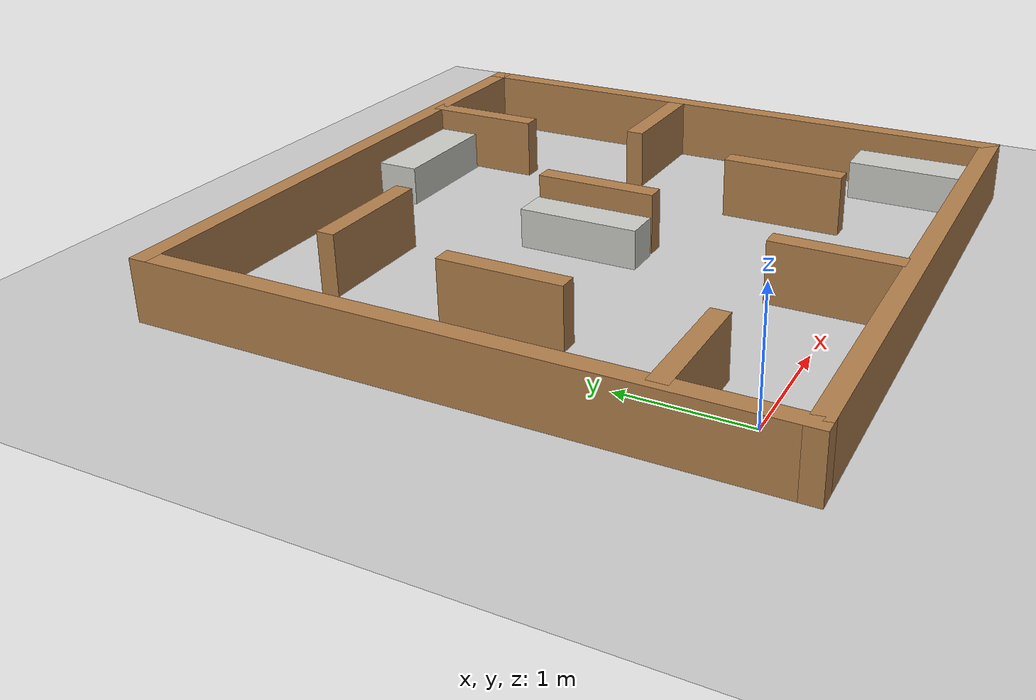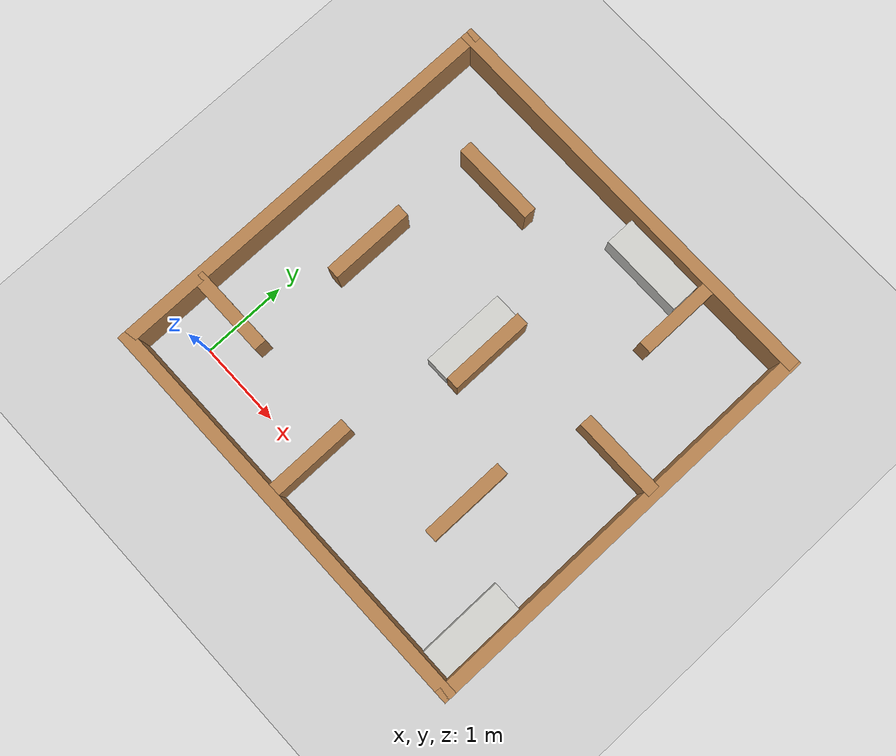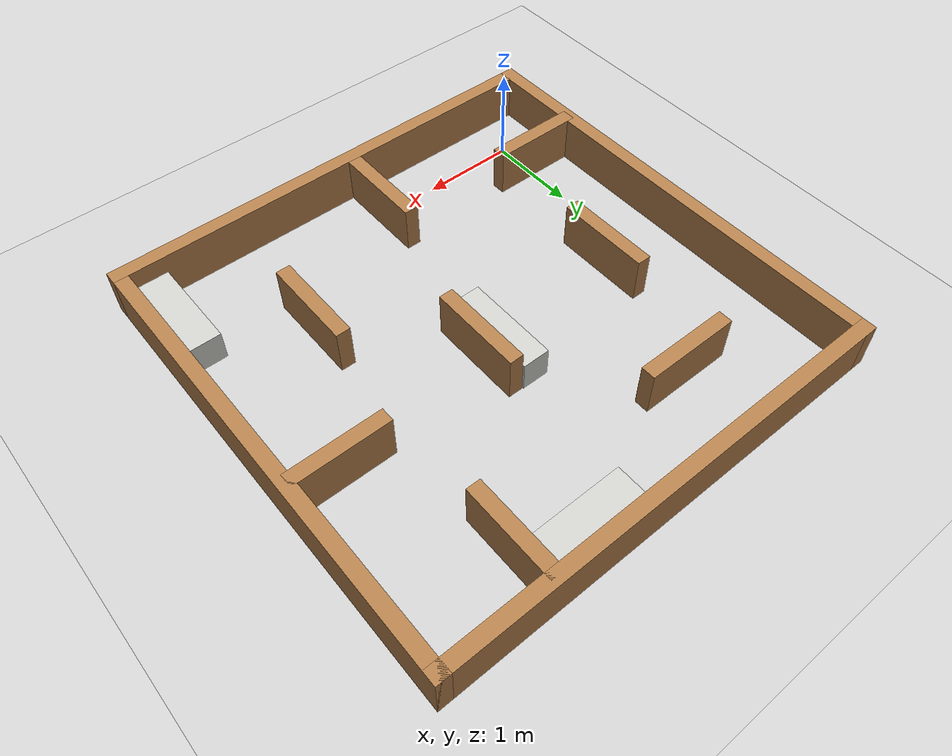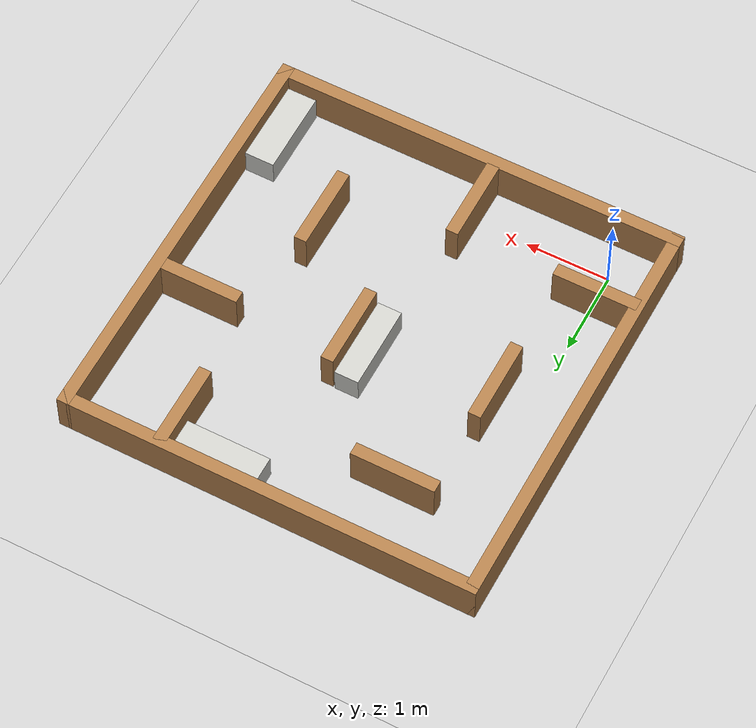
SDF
<sdf version="1.6">
 <world name="default">
  <light name="sun" type="directional">
   <pose>0 0 10 0 -0 0</pose>
   <diffuse>0.8 0.8 0.8 1</diffuse>
   <specular>0.2 0.2 0.2 1</specular>
   <attenuation>
    <range>1000</range>
    <constant>0.9</constant>
    <linear>0.01</linear>
    <quadratic>0.001</quadratic>
   </attenuation>
   <direction>-0.5 0.1 -0.9</direction>
  </light>
  <model name="ground_plane">
   <static>1</static>
   <link name="link">
    <collision name="collision">
     <geometry><plane><normal>0 0 1</normal><size>100 100</size></plane></geometry>
     <surface>
      <contact><collide_bitmask>65535</collide_bitmask></contact>
      <friction><ode><mu>100</mu><mu2>50</mu2></ode></friction>
     </surface>
    </collision>
    <visual name="visual">
     <cast_shadows>0</cast_shadows>
     <geometry><plane><normal>0 0 1</normal><size>100 100</size></plane></geometry>
     <material>
      <script><uri>file://media/materials/scripts/gazebo.material</uri><name>Gazebo/Grey</name></script>
     </material>
    </visual>
   </link>
  </model>
  <gravity>0 0 -9.8</gravity>
  <magnetic_field>6e-06 2.3e-05 -4.2e-05</magnetic_field>
  <atmosphere type="adiabatic"/>
  <physics name="default_physics" default="0" type="ode">
   <max_step_size>0.001</max_step_size>
   <real_time_factor>1</real_time_factor>
   <real_time_update_rate>1000</real_time_update_rate>
  </physics>
  <scene><ambient>0.4 0.4 0.4 1</ambient><background>0.7 0.7 0.7 1</background><shadows>1</shadows></scene>
  <spherical_coordinates>
   <surface_model>EARTH_WGS84</surface_model>
   <latitude_deg>0</latitude_deg>
   <longitude_deg>0</longitude_deg>
   <elevation>0</elevation>
   <heading_deg>0</heading_deg>
  </spherical_coordinates>
  <model name="turtlebot3_plaza">
   <pose>1.88247 1.91248 0.009705 0 -0 0</pose>
   <link name="Wall_0">
    <collision name="Wall_0_Collision">
     <geometry><box><size>5 0.15 0.5</size></box></geometry>
     <pose>0 0 0.25 0 -0 0</pose>
    </collision>
    <visual name="Wall_0_Visual">
     <pose>0 0 0.25 0 -0 0</pose>
     <geometry><box><size>5 0.15 0.5</size></box></geometry>
     <material>
      <script><uri>file://media/materials/scripts/gazebo.material</uri><name>Gazebo/Wood</name></script>
      <ambient>1 1 1 1</ambient>
     </material>
    </visual>
    <pose>-2.425 0 0 0 -0 1.5708</pose>
   </link>
   <link name="Wall_11">
    <collision name="Wall_11_Collision">
     <geometry><box><size>1 0.15 0.5</size></box></geometry>
     <pose>0 0 0.25 0 -0 0</pose>
    </collision>
    <visual name="Wall_11_Visual">
     <pose>0 0 0.25 0 -0 0</pose>
     <geometry><box><size>1 0.15 0.5</size></box></geometry>
     <material>
      <script><uri>file://media/materials/scripts/gazebo.material</uri><name>Gazebo/Wood</name></script>
      <ambient>1 1 1 1</ambient>
     </material>
    </visual>
    <pose>-1.937 -1.467 0 0 -0 0</pose>
   </link>
   <link name="Wall_13">
    <collision name="Wall_13_Collision">
     <geometry><box><size>1 0.15 0.5</size></box></geometry>
     <pose>0 0 0.25 0 -0 0</pose>
    </collision>
    <visual name="Wall_13_Visual">
     <pose>0 0 0.25 0 -0 0</pose>
     <geometry><box><size>1 0.15 0.5</size></box></geometry>
     <material>
      <script><uri>file://media/materials/scripts/gazebo.material</uri><name>Gazebo/Wood</name></script>
      <ambient>1 1 1 1</ambient>
     </material>
    </visual>
    <pose>-0.22 -1.866 0 0 0 -1.5708</pose>
   </link>
   <link name="Wall_15">
    <collision name="Wall_15_Collision">
     <geometry><box><size>1 0.15 0.5</size></box></geometry>
     <pose>0 0 0.25 0 -0 0</pose>
    </collision>
    <visual name="Wall_15_Visual">
     <pose>0 0 0.25 0 -0 0</pose>
     <geometry><box><size>1 0.15 0.5</size></box></geometry>
     <material>
      <script><uri>file://media/materials/scripts/gazebo.material</uri><name>Gazebo/Wood</name></script>
      <ambient>1 1 1 1</ambient>
     </material>
    </visual>
    <pose>1.195 -1.002 0 0 -0 1.5708</pose>
   </link>
   <link name="Wall_17">
    <collision name="Wall_17_Collision">
     <geometry><box><size>1 0.15 0.5</size></box></geometry>
     <pose>0 0 0.25 0 -0 0</pose>
    </collision>
    <visual name="Wall_17_Visual">
     <pose>0 0 0.25 0 -0 0</pose>
     <geometry><box><size>1 0.15 0.5</size></box></geometry>
     <material>
      <script><uri>file://media/materials/scripts/gazebo.material</uri><name>Gazebo/Wood</name></script>
      <ambient>1 1 1 1</ambient>
     </material>
    </visual>
    <pose>1.288 1.93 0 0 0 -1.5708</pose>
   </link>
   <link name="Wall_19">
    <collision name="Wall_19_Collision">
     <geometry><box><size>1 0.15 0.5</size></box></geometry>
     <pose>0 0 0.25 0 -0 0</pose>
    </collision>
    <visual name="Wall_19_Visual">
     <pose>0 0 0.25 0 -0 0</pose>
     <geometry><box><size>1 0.15 0.5</size></box></geometry>
     <material>
      <script><uri>file://media/materials/scripts/gazebo.material</uri><name>Gazebo/Wood</name></script>
      <ambient>1 1 1 1</ambient>
     </material>
    </visual>
    <pose>1.91128 0.4632 0 0 -0 0</pose>
   </link>
   <link name="Wall_2">
    <collision name="Wall_2_Collision">
     <geometry><box><size>5 0.15 0.5</size></box></geometry>
     <pose>0 0 0.25 0 -0 0</pose>
    </collision>
    <visual name="Wall_2_Visual">
     <pose>0 0 0.25 0 -0 0</pose>
     <geometry><box><size>5 0.15 0.5</size></box></geometry>
     <material>
      <script><uri>file://media/materials/scripts/gazebo.material</uri><name>Gazebo/Wood</name></script>
      <ambient>1 1 1 1</ambient>
     </material>
    </visual>
    <pose>0 2.425 0 0 -0 0</pose>
   </link>
   <link name="Wall_21">
    <collision name="Wall_21_Collision">
     <geometry><box><size>1 0.15 0.5</size></box></geometry>
     <pose>0 0 0.25 0 -0 0</pose>
    </collision>
    <visual name="Wall_21_Visual">
     <pose>0 0 0.25 0 -0 0</pose>
     <geometry><box><size>1 0.15 0.5</size></box></geometry>
     <material>
      <script><uri>file://media/materials/scripts/gazebo.material</uri><name>Gazebo/Wood</name></script>
      <ambient>1 1 1 1</ambient>
     </material>
    </visual>
    <pose>0.204 0.215 0 0 0 -1.5708</pose>
   </link>
   <link name="Wall_3">
    <collision name="Wall_3_Collision">
     <geometry><box><size>5 0.15 0.5</size></box></geometry>
     <pose>0 0 0.25 0 -0 0</pose>
    </collision>
    <visual name="Wall_3_Visual">
     <pose>0 0 0.25 0 -0 0</pose>
     <geometry><box><size>5 0.15 0.5</size></box></geometry>
     <material>
      <script><uri>file://media/materials/scripts/gazebo.material</uri><name>Gazebo/Wood</name></script>
      <ambient>1 1 1 1</ambient>
     </material>
    </visual>
    <pose>2.425 0 0 0 0 -1.5708</pose>
   </link>
   <link name="Wall_4">
    <collision name="Wall_4_Collision">
     <geometry><box><size>5 0.15 0.5</size></box></geometry>
     <pose>0 0 0.25 0 -0 0</pose>
    </collision>
    <visual name="Wall_4_Visual">
     <pose>0 0 0.25 0 -0 0</pose>
     <geometry><box><size>5 0.15 0.5</size></box></geometry>
     <material>
      <script><uri>file://media/materials/scripts/gazebo.material</uri><name>Gazebo/Wood</name></script>
      <ambient>1 1 1 1</ambient>
     </material>
    </visual>
    <pose>0 -2.425 0 0 -0 3.14159</pose>
   </link>
   <link name="Wall_7">
    <collision name="Wall_7_Collision">
     <geometry><box><size>1 0.15 0.5</size></box></geometry>
     <pose>0 0 0.25 0 -0 0</pose>
    </collision>
    <visual name="Wall_7_Visual">
     <pose>0 0 0.25 0 -0 0</pose>
     <geometry><box><size>1 0.15 0.5</size></box></geometry>
     <material>
      <script><uri>file://media/materials/scripts/gazebo.material</uri><name>Gazebo/Wood</name></script>
      <ambient>1 1 1 1</ambient>
     </material>
    </visual>
    <pose>-1.064 1.548 0 0 -0 0</pose>
   </link>
   <link name="Wall_9">
    <collision name="Wall_9_Collision">
     <geometry><box><size>1 0.15 0.5</size></box></geometry>
     <pose>0 0 0.25 0 -0 0</pose>
    </collision>
    <visual name="Wall_9_Visual">
     <pose>0 0 0.25 0 -0 0</pose>
     <geometry><box><size>1 0.15 0.5</size></box></geometry>
     <material>
      <script><uri>file://media/materials/scripts/gazebo.material</uri><name>Gazebo/Wood</name></script>
      <ambient>1 1 1 1</ambient>
     </material>
    </visual>
    <pose>-1.502 0.092 0 0 0 -1.5708</pose>
   </link>
   <static>1</static>
  </model>
  <model name="small_table_0">
   <link name="link">
    <inertial>
     <mass>1</mass>
     <inertia>
      <ixx>0.166667</ixx>
      <ixy>0</ixy>
      <ixz>0</ixz>
      <iyy>0.166667</iyy>
      <iyz>0</iyz>
      <izz>0.166667</izz>
     </inertia>
    </inertial>
    <visual name="visual">
     <geometry><box><size>0.352218 1 0.326929</size></box></geometry>
     <material>
      <script><name>Gazebo/CeilingTiled</name><uri>file://media/materials/scripts/gazebo.material</uri></script>
      <shader type="pixel"><normal_map>__default__</normal_map></shader>
      <ambient>0.7 0.7 0.7 1</ambient>
      <diffuse>0.9 0.9 0.9 1</diffuse>
      <specular>0.01 0.01 0.01 1</specular>
      <emissive>0 0 0 1</emissive>
     </material>
    </visual>
    <collision name="collision">
     <geometry><box><size>0.352218 1 0.326929</size></box></geometry>
     <surface>
      <friction>
       <ode><mu>1</mu><mu2>1</mu2><fdir1>0 0 0</fdir1><slip1>0</slip1><slip2>0</slip2></ode>
       <torsional>
        <coefficient>1</coefficient>
        <patch_radius>0</patch_radius>
        <surface_radius>0</surface_radius>
        <use_patch_radius>1</use_patch_radius>
        <ode><slip>0</slip></ode>
       </torsional>
      </friction>
      <bounce><restitution_coefficient>0</restitution_coefficient><threshold>1e+06</threshold></bounce>
      <contact>
       <collide_without_contact>0</collide_without_contact>
       <collide_without_contact_bitmask>1</collide_without_contact_bitmask>
       <collide_bitmask>1</collide_bitmask>
       <ode>
        <soft_cfm>0</soft_cfm>
        <soft_erp>0.2</soft_erp>
        <kp>1e+13</kp>
        <kd>1</kd>
        <max_vel>0.01</max_vel>
        <min_depth>0</min_depth>
       </ode>
       <bullet>
        <split_impulse>1</split_impulse>
        <split_impulse_penetration_threshold>-0.01</split_impulse_penetration_threshold>
        <soft_cfm>0</soft_cfm>
        <soft_erp>0.2</soft_erp>
        <kp>1e+13</kp>
        <kd>1</kd>
       </bullet>
      </contact>
     </surface>
    </collision>
   </link>
   <static>0</static>
   <pose>2.58205 4.07211 0.163465 0 -0 1.57126</pose>
  </model>
  <model name="small_table_1">
   <link name="link">
    <inertial>
     <mass>1</mass>
     <inertia>
      <ixx>0.166667</ixx>
      <ixy>0</ixy>
      <ixz>0</ixz>
      <iyy>0.166667</iyy>
      <iyz>0</iyz>
      <izz>0.166667</izz>
     </inertia>
    </inertial>
    <visual name="visual">
     <geometry><box><size>0.352218 1 0.326929</size></box></geometry>
     <material>
      <script><name>Gazebo/CeilingTiled</name><uri>file://media/materials/scripts/gazebo.material</uri></script>
      <shader type="pixel"><normal_map>__default__</normal_map></shader>
      <ambient>0.7 0.7 0.7 1</ambient>
      <diffuse>0.9 0.9 0.9 1</diffuse>
      <specular>0.01 0.01 0.01 1</specular>
      <emissive>0 0 0 1</emissive>
     </material>
    </visual>
    <collision name="collision">
     <geometry><box><size>0.352218 1 0.326929</size></box></geometry>
     <surface>
      <friction>
       <ode><mu>1</mu><mu2>1</mu2><fdir1>0 0 0</fdir1><slip1>0</slip1><slip2>0</slip2></ode>
       <torsional>
        <coefficient>1</coefficient>
        <patch_radius>0</patch_radius>
        <surface_radius>0</surface_radius>
        <use_patch_radius>1</use_patch_radius>
        <ode><slip>0</slip></ode>
       </torsional>
      </friction>
      <bounce><restitution_coefficient>0</restitution_coefficient><threshold>1e+06</threshold></bounce>
      <contact>
       <collide_without_contact>0</collide_without_contact>
       <collide_without_contact_bitmask>1</collide_without_contact_bitmask>
       <collide_bitmask>1</collide_bitmask>
       <ode>
        <soft_cfm>0</soft_cfm>
        <soft_erp>0.2</soft_erp>
        <kp>1e+13</kp>
        <kd>1</kd>
        <max_vel>0.01</max_vel>
        <min_depth>0</min_depth>
       </ode>
       <bullet>
        <split_impulse>1</split_impulse>
        <split_impulse_penetration_threshold>-0.01</split_impulse_penetration_threshold>
        <soft_cfm>0</soft_cfm>
        <soft_erp>0.2</soft_erp>
        <kp>1e+13</kp>
        <kd>1</kd>
       </bullet>
      </contact>
     </surface>
    </collision>
   </link>
   <static>0</static>
   <pose>4.05235 0.077554 0.163465 0 -0 0</pose>
  </model>
  <model name="small_table">
   <link name="link">
    <inertial>
     <mass>0.815675</mass>
     <inertia>
      <ixx>0.075238</ixx>
      <ixy>0</ixy>
      <ixz>0</ixz>
      <iyy>0.0128756</iyy>
      <iyz>0</iyz>
      <izz>0.0735833</izz>
     </inertia>
    </inertial>
    <visual name="visual">
     <geometry><box><size>0.287297 1 0.326929</size></box></geometry>
     <material>
      <script><name>Gazebo/CeilingTiled</name><uri>file://media/materials/scripts/gazebo.material</uri></script>
      <shader type="pixel"><normal_map>__default__</normal_map></shader>
      <ambient>0.7 0.7 0.7 1</ambient>
      <diffuse>0.9 0.9 0.9 1</diffuse>
      <specular>0.01 0.01 0.01 1</specular>
      <emissive>0 0 0 1</emissive>
     </material>
    </visual>
    <collision name="collision">
     <geometry><box><size>0.287297 1 0.326929</size></box></geometry>
     <surface>
      <friction>
       <ode><mu>1</mu><mu2>1</mu2><fdir1>0 0 0</fdir1><slip1>0</slip1><slip2>0</slip2></ode>
       <torsional>
        <coefficient>1</coefficient>
        <patch_radius>0</patch_radius>
        <surface_radius>0</surface_radius>
        <use_patch_radius>1</use_patch_radius>
        <ode><slip>0</slip></ode>
       </torsional>
      </friction>
      <bounce><restitution_coefficient>0</restitution_coefficient><threshold>1e+06</threshold></bounce>
      <contact>
       <collide_without_contact>0</collide_without_contact>
       <collide_without_contact_bitmask>1</collide_without_contact_bitmask>
       <collide_bitmask>1</collide_bitmask>
       <ode>
        <soft_cfm>0</soft_cfm>
        <soft_erp>0.2</soft_erp>
        <kp>1e+13</kp>
        <kd>1</kd>
        <max_vel>0.01</max_vel>
        <min_depth>0</min_depth>
       </ode>
       <bullet>
        <split_impulse>1</split_impulse>
        <split_impulse_penetration_threshold>-0.01</split_impulse_penetration_threshold>
        <soft_cfm>0</soft_cfm>
        <soft_erp>0.2</soft_erp>
        <kp>1e+13</kp>
        <kd>1</kd>
       </bullet>
      </contact>
     </surface>
    </collision>
   </link>
   <static>0</static>
   <pose>1.85112 2.13075 0.163465 0 0 -4e-06</pose>
  </model>
 </world>
</sdf>
